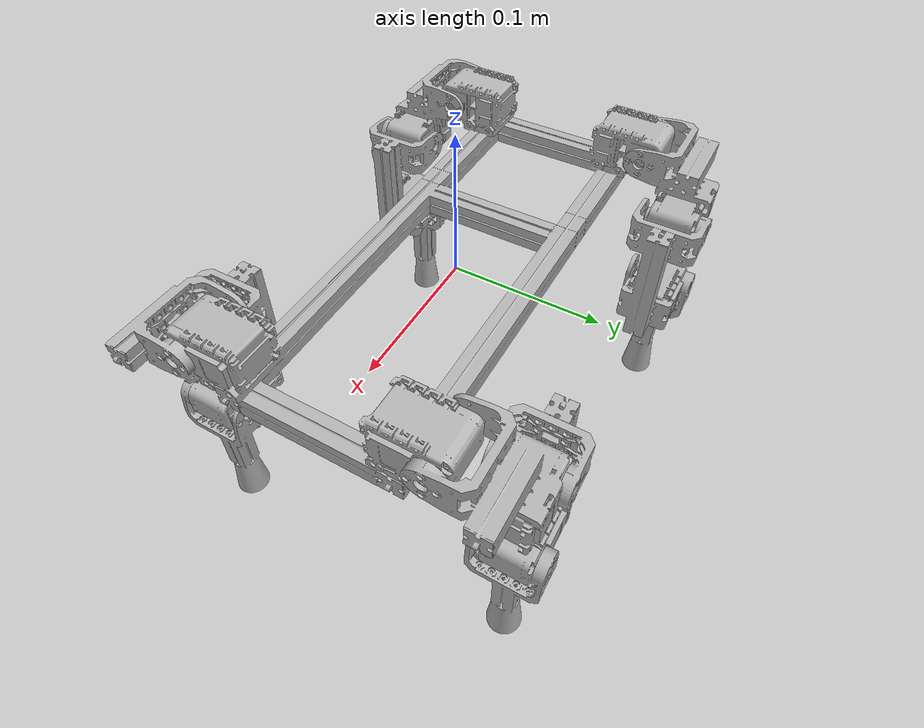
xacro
<?xml version="1.0" ?>
<robot name="sparky4" xmlns:xacro="http://www.ros.org/wiki/xacro">

<xacro:include filename="$(find sparky4_description)/urdf/materials.xacro" />
<xacro:include filename="$(find sparky4_description)/urdf/sparky4.trans" />
<xacro:include filename="$(find sparky4_description)/urdf/sparky4.gazebo" />
<link name="base_link">
  <inertial>
    <origin rpy="0 0 0" xyz="-0.0030445709897522553 0.0009159903249310375 0.02064399153635404"/>
    <mass value="2.767359729998042"/>
    <inertia ixx="0.008963" ixy="0.000112" ixz="-5.6e-05" iyy="0.043823" iyz="9e-06" izz="0.051668"/>
  </inertial>
  <visual>
    <origin rpy="0 0 0" xyz="0 0 0"/>
    <geometry>
      <mesh filename="package://sparky4_description/meshes/base_link.stl" scale="0.001 0.001 0.001"/>
    </geometry>
    <material name="silver"/>
  </visual>
  <collision>
    <origin rpy="0 0 0" xyz="0 0 0"/>
    <geometry>
      <mesh filename="package://sparky4_description/meshes/base_link.stl" scale="0.001 0.001 0.001"/>
    </geometry>
  </collision>
</link>

<link name="rf_hip_1">
  <inertial>
    <origin rpy="0 0 0" xyz="-0.02312045273011029 -0.030988365562342968 -0.02497288051171581"/>
    <mass value="0.06259861584578735"/>
    <inertia ixx="2.4e-05" ixy="-2e-06" ixz="-8e-06" iyy="3.3e-05" iyz="-4e-06" izz="2.7e-05"/>
  </inertial>
  <visual>
    <origin rpy="0 0 0" xyz="-0.15646 0.073945 -0.034286"/>
    <geometry>
      <mesh filename="package://sparky4_description/meshes/rf_hip_1.stl" scale="0.001 0.001 0.001"/>
    </geometry>
    <material name="silver"/>
  </visual>
  <collision>
    <origin rpy="0 0 0" xyz="-0.15646 0.073945 -0.034286"/>
    <geometry>
      <mesh filename="package://sparky4_description/meshes/rf_hip_1.stl" scale="0.001 0.001 0.001"/>
    </geometry>
  </collision>
</link>

<link name="rf_upper_1">
  <inertial>
    <origin rpy="0 0 0" xyz="-0.009414585800412531 0.01315168811465317 -0.04918651488271204"/>
    <mass value="0.5507860066210719"/>
    <inertia ixx="0.000457" ixy="2e-06" ixz="0.00012" iyy="0.000599" iyz="7e-06" izz="0.000262"/>
  </inertial>
  <visual>
    <origin rpy="0 0 0" xyz="-0.113842 0.121071 0.000254"/>
    <geometry>
      <mesh filename="package://sparky4_description/meshes/rf_upper_1.stl" scale="0.001 0.001 0.001"/>
    </geometry>
    <material name="silver"/>
  </visual>
  <collision>
    <origin rpy="0 0 0" xyz="-0.113842 0.121071 0.000254"/>
    <geometry>
      <mesh filename="package://sparky4_description/meshes/rf_upper_1.stl" scale="0.001 0.001 0.001"/>
    </geometry>
  </collision>
</link>

<link name="rf_lower_1">
  <inertial>
    <origin rpy="0 0 0" xyz="-0.0007153812152350114 0.01288818651473124 -0.056188682704720286"/>
    <mass value="0.029085864475835384"/>
    <inertia ixx="3.8e-05" ixy="0.0" ixz="-0.0" iyy="3.6e-05" iyz="1e-06" izz="4e-06"/>
  </inertial>
  <visual>
    <origin rpy="0 0 0" xyz="-0.129342 0.120985 0.065129"/>
    <geometry>
      <mesh filename="package://sparky4_description/meshes/rf_lower_1.stl" scale="0.001 0.001 0.001"/>
    </geometry>
    <material name="silver"/>
  </visual>
  <collision>
    <origin rpy="0 0 0" xyz="-0.129342 0.120985 0.065129"/>
    <geometry>
      <mesh filename="package://sparky4_description/meshes/rf_lower_1.stl" scale="0.001 0.001 0.001"/>
    </geometry>
  </collision>
</link>

<link name="lf_hip_1">
  <inertial>
    <origin rpy="0 0 0" xyz="-0.02312044219188225 0.03098843746715446 -0.024972883319291497"/>
    <mass value="0.06259859550258465"/>
    <inertia ixx="2.4e-05" ixy="2e-06" ixz="-8e-06" iyy="3.3e-05" iyz="4e-06" izz="2.7e-05"/>
  </inertial>
  <visual>
    <origin rpy="0 0 0" xyz="-0.15347 -0.075135 -0.034036"/>
    <geometry>
      <mesh filename="package://sparky4_description/meshes/lf_hip_1.stl" scale="0.001 0.001 0.001"/>
    </geometry>
    <material name="silver"/>
  </visual>
  <collision>
    <origin rpy="0 0 0" xyz="-0.15347 -0.075135 -0.034036"/>
    <geometry>
      <mesh filename="package://sparky4_description/meshes/lf_hip_1.stl" scale="0.001 0.001 0.001"/>
    </geometry>
  </collision>
</link>

<link name="lf_upper_1">
  <inertial>
    <origin rpy="0 0 0" xyz="-0.009414594526368836 -0.013151561436452477 -0.0491865724321654"/>
    <mass value="0.5507853722308999"/>
    <inertia ixx="0.000457" ixy="-2e-06" ixz="0.00012" iyy="0.000599" iyz="-7e-06" izz="0.000262"/>
  </inertial>
  <visual>
    <origin rpy="0 0 0" xyz="-0.110852 -0.122261 0.000504"/>
    <geometry>
      <mesh filename="package://sparky4_description/meshes/lf_upper_1.stl" scale="0.001 0.001 0.001"/>
    </geometry>
    <material name="silver"/>
  </visual>
  <collision>
    <origin rpy="0 0 0" xyz="-0.110852 -0.122261 0.000504"/>
    <geometry>
      <mesh filename="package://sparky4_description/meshes/lf_upper_1.stl" scale="0.001 0.001 0.001"/>
    </geometry>
  </collision>
</link>

<link name="lf_lower_1">
  <inertial>
    <origin rpy="0 0 0" xyz="-0.0007153812247730207 -0.012888070070416396 -0.056188683453603866"/>
    <mass value="0.029085864088178818"/>
    <inertia ixx="3.8e-05" ixy="-0.0" ixz="-0.0" iyy="3.6e-05" iyz="-1e-06" izz="4e-06"/>
  </inertial>
  <visual>
    <origin rpy="0 0 0" xyz="-0.126352 -0.122175 0.065379"/>
    <geometry>
      <mesh filename="package://sparky4_description/meshes/lf_lower_1.stl" scale="0.001 0.001 0.001"/>
    </geometry>
    <material name="silver"/>
  </visual>
  <collision>
    <origin rpy="0 0 0" xyz="-0.126352 -0.122175 0.065379"/>
    <geometry>
      <mesh filename="package://sparky4_description/meshes/lf_lower_1.stl" scale="0.001 0.001 0.001"/>
    </geometry>
  </collision>
</link>

<link name="rh_hip_1">
  <inertial>
    <origin rpy="0 0 0" xyz="0.023120047678799965 -0.030988320987065388 -0.02497288331928113"/>
    <mass value="0.06259859550258465"/>
    <inertia ixx="2.4e-05" ixy="2e-06" ixz="8e-06" iyy="3.3e-05" iyz="-4e-06" izz="2.7e-05"/>
  </inertial>
  <visual>
    <origin rpy="0 0 0" xyz="0.157114 0.073945 -0.034286"/>
    <geometry>
      <mesh filename="package://sparky4_description/meshes/rh_hip_1.stl" scale="0.001 0.001 0.001"/>
    </geometry>
    <material name="silver"/>
  </visual>
  <collision>
    <origin rpy="0 0 0" xyz="0.157114 0.073945 -0.034286"/>
    <geometry>
      <mesh filename="package://sparky4_description/meshes/rh_hip_1.stl" scale="0.001 0.001 0.001"/>
    </geometry>
  </collision>
</link>

<link name="rh_upper_1">
  <inertial>
    <origin rpy="0 0 0" xyz="0.009415200013284095 0.01315167791654151 -0.049186572432156295"/>
    <mass value="0.5507853722308999"/>
    <inertia ixx="0.000457" ixy="-2e-06" ixz="-0.00012" iyy="0.000599" iyz="7e-06" izz="0.000262"/>
  </inertial>
  <visual>
    <origin rpy="0 0 0" xyz="0.114497 0.121071 0.000254"/>
    <geometry>
      <mesh filename="package://sparky4_description/meshes/rh_upper_1.stl" scale="0.001 0.001 0.001"/>
    </geometry>
    <material name="silver"/>
  </visual>
  <collision>
    <origin rpy="0 0 0" xyz="0.114497 0.121071 0.000254"/>
    <geometry>
      <mesh filename="package://sparky4_description/meshes/rh_upper_1.stl" scale="0.001 0.001 0.001"/>
    </geometry>
  </collision>
</link>

<link name="rh_lower_1">
  <inertial>
    <origin rpy="0 0 0" xyz="0.0007159867116854346 0.012888186550505248 -0.056188683453593596"/>
    <mass value="0.029085864088178818"/>
    <inertia ixx="3.8e-05" ixy="-0.0" ixz="0.0" iyy="3.6e-05" iyz="1e-06" izz="4e-06"/>
  </inertial>
  <visual>
    <origin rpy="0 0 0" xyz="0.129997 0.120985 0.065129"/>
    <geometry>
      <mesh filename="package://sparky4_description/meshes/rh_lower_1.stl" scale="0.001 0.001 0.001"/>
    </geometry>
    <material name="silver"/>
  </visual>
  <collision>
    <origin rpy="0 0 0" xyz="0.129997 0.120985 0.065129"/>
    <geometry>
      <mesh filename="package://sparky4_description/meshes/rh_lower_1.stl" scale="0.001 0.001 0.001"/>
    </geometry>
  </collision>
</link>

<link name="lh_hip_1">
  <inertial>
    <origin rpy="0 0 0" xyz="0.023120558217028325 0.030988482042433027 -0.024972880511715034"/>
    <mass value="0.06259861584578735"/>
    <inertia ixx="2.4e-05" ixy="-2e-06" ixz="8e-06" iyy="3.3e-05" iyz="4e-06" izz="2.7e-05"/>
  </inertial>
  <visual>
    <origin rpy="0 0 0" xyz="0.157043 -0.076035 -0.034296"/>
    <geometry>
      <mesh filename="package://sparky4_description/meshes/lh_hip_1.stl" scale="0.001 0.001 0.001"/>
    </geometry>
    <material name="silver"/>
  </visual>
  <collision>
    <origin rpy="0 0 0" xyz="0.157043 -0.076035 -0.034296"/>
    <geometry>
      <mesh filename="package://sparky4_description/meshes/lh_hip_1.stl" scale="0.001 0.001 0.001"/>
    </geometry>
  </collision>
</link>

<link name="lh_upper_1">
  <inertial>
    <origin rpy="0 0 0" xyz="0.009414691287327429 -0.013151571634563472 -0.04918651488271246"/>
    <mass value="0.5507860066210719"/>
    <inertia ixx="0.000457" ixy="2e-06" ixz="-0.00012" iyy="0.000599" iyz="-7e-06" izz="0.000262"/>
  </inertial>
  <visual>
    <origin rpy="0 0 0" xyz="0.114425 -0.123161 0.000244"/>
    <geometry>
      <mesh filename="package://sparky4_description/meshes/lh_upper_1.stl" scale="0.001 0.001 0.001"/>
    </geometry>
    <material name="silver"/>
  </visual>
  <collision>
    <origin rpy="0 0 0" xyz="0.114425 -0.123161 0.000244"/>
    <geometry>
      <mesh filename="package://sparky4_description/meshes/lh_upper_1.stl" scale="0.001 0.001 0.001"/>
    </geometry>
  </collision>
</link>

<link name="lh_lower_1">
  <inertial>
    <origin rpy="0 0 0" xyz="-0.0007157171931690964 -0.012888070070414509 -0.05618868345359837"/>
    <mass value="0.029085864088178818"/>
    <inertia ixx="3.8e-05" ixy="-0.0" ixz="-0.0" iyy="3.6e-05" iyz="-1e-06" izz="4e-06"/>
  </inertial>
  <visual>
    <origin rpy="0 0 0" xyz="0.129925 -0.123075 0.065119"/>
    <geometry>
      <mesh filename="package://sparky4_description/meshes/lh_lower_1.stl" scale="0.001 0.001 0.001"/>
    </geometry>
    <material name="silver"/>
  </visual>
  <collision>
    <origin rpy="0 0 0" xyz="0.129925 -0.123075 0.065119"/>
    <geometry>
      <mesh filename="package://sparky4_description/meshes/lh_lower_1.stl" scale="0.001 0.001 0.001"/>
    </geometry>
  </collision>
</link>

<joint name="rf1" type="revolute">
  <origin rpy="0 0 0" xyz="0.15646 -0.073945 0.034286"/>
  <parent link="base_link"/>
  <child link="rf_hip_1"/>
  <axis xyz="1.0 0.0 -0.0"/>
  <limit effort="50" lower="-3.14159265359" upper="3.14159265359" velocity="5"/>
</joint>

<joint name="rf2" type="revolute">
  <origin rpy="0 0 0" xyz="-0.042618 -0.047126 -0.03454"/>
  <parent link="rf_hip_1"/>
  <child link="rf_upper_1"/>
  <axis xyz="0.0 1.0 0.0"/>
  <limit effort="50" lower="-3.14159265359" upper="3.14159265359" velocity="5"/>
</joint>

<joint name="rf3" type="revolute">
  <origin rpy="0 0 0" xyz="0.0155 8.6e-05 -0.064875"/>
  <parent link="rf_upper_1"/>
  <child link="rf_lower_1"/>
  <axis xyz="-0.0 1.0 0.0"/>
  <limit effort="50" lower="-3.14159265359" upper="3.14159265359" velocity="5"/>
</joint>

<joint name="lf1" type="revolute">
  <origin rpy="0 0 0" xyz="0.15347 0.075135 0.034036"/>
  <parent link="base_link"/>
  <child link="lf_hip_1"/>
  <axis xyz="1.0 0.0 -0.0"/>
  <limit effort="50" lower="-3.14159265359" upper="3.14159265359" velocity="5"/>
</joint>

<joint name="lf2" type="revolute">
  <origin rpy="0 0 0" xyz="-0.042618 0.047126 -0.03454"/>
  <parent link="lf_hip_1"/>
  <child link="lf_upper_1"/>
  <axis xyz="0.0 1.0 0.0"/>
  <limit effort="50" lower="-3.14159265359" upper="3.14159265359" velocity="5"/>
</joint>

<joint name="lf3" type="revolute">
  <origin rpy="0 0 0" xyz="0.0155 -8.6e-05 -0.064875"/>
  <parent link="lf_upper_1"/>
  <child link="lf_lower_1"/>
  <axis xyz="0.0 1.0 0.0"/>
  <limit effort="50" lower="-3.14159265359" upper="3.14159265359" velocity="5"/>
</joint>

<joint name="rh1" type="revolute">
  <origin rpy="0 0 0" xyz="-0.157114 -0.073945 0.034286"/>
  <parent link="base_link"/>
  <child link="rh_hip_1"/>
  <axis xyz="1.0 0.0 0.0"/>
  <limit effort="50" lower="-3.14159265359" upper="3.14159265359" velocity="5"/>
</joint>

<joint name="rh2" type="revolute">
  <origin rpy="0 0 0" xyz="0.042617 -0.047126 -0.03454"/>
  <parent link="rh_hip_1"/>
  <child link="rh_upper_1"/>
  <axis xyz="-0.0 1.0 0.0"/>
  <limit effort="50" lower="-3.14159265359" upper="3.14159265359" velocity="5"/>
</joint>

<joint name="rh3" type="revolute">
  <origin rpy="0 0 0" xyz="-0.0155 8.6e-05 -0.064875"/>
  <parent link="rh_upper_1"/>
  <child link="rh_lower_1"/>
  <axis xyz="-0.0 1.0 0.0"/>
  <limit effort="50" lower="-3.14159265359" upper="3.14159265359" velocity="5"/>
</joint>

<joint name="lh1" type="revolute">
  <origin rpy="0 0 0" xyz="-0.157043 0.076035 0.034296"/>
  <parent link="base_link"/>
  <child link="lh_hip_1"/>
  <axis xyz="1.0 -0.0 0.0"/>
  <limit effort="50" lower="-3.14159265359" upper="3.14159265359" velocity="5"/>
</joint>

<joint name="lh2" type="revolute">
  <origin rpy="0 0 0" xyz="0.042618 0.047126 -0.03454"/>
  <parent link="lh_hip_1"/>
  <child link="lh_upper_1"/>
  <axis xyz="-0.0 1.0 -0.0"/>
  <limit effort="50" lower="-3.14159265359" upper="3.14159265359" velocity="5"/>
</joint>

<joint name="lh3" type="revolute">
  <origin rpy="0 0 0" xyz="-0.0155 -8.6e-05 -0.064875"/>
  <parent link="lh_upper_1"/>
  <child link="lh_lower_1"/>
  <axis xyz="0.0 1.0 -0.0"/>
  <limit effort="50" lower="-3.14159265359" upper="3.14159265359" velocity="5"/>
</joint>

  <!--added stuff for compatibility with CHAMP Quadruped Gait Package-->

  <link name="rf_foot"/>
  <joint name="rf_foot_to_lower_leg" type="fixed">
    <parent link="rf_lower_1"/>
    <child link="rf_foot"/>
    <origin rpy="0 0 0" xyz="0 .014 -.11"/>
  </joint>

  <link name="lf_foot"/>
  <joint name="lf_foot_to_lower_leg" type="fixed">
    <parent link="lf_lower_1"/>
    <child link="lf_foot"/>
    <origin rpy="0 0 0" xyz="0 -.014 -.11"/>
  </joint>

  <link name="rh_foot"/>
  <joint name="rh_foot_to_lower_leg" type="fixed">
    <parent link="rh_lower_1"/>
    <child link="rh_foot"/>
    <origin rpy="0 0 0" xyz="0 .014 -.11"/>
  </joint>

  <link name="lh_foot"/>
  <joint name="lh_foot_to_lower_leg" type="fixed">
    <parent link="lh_lower_1"/>
    <child link="lh_foot"/>
    <origin rpy="0 0 0" xyz="0 -.014 -.11"/>
  </joint>
</robot>

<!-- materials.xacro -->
<robot name="sparky4" xmlns:xacro="http://www.ros.org/wiki/xacro" >

<material name="silver">
  <color rgba="0.700 0.700 0.700 1.000"/>
</material>

</robot>

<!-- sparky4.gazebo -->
<robot name="sparky4" xmlns:xacro="http://www.ros.org/wiki/xacro" >

<xacro:property name="body_color" value="Gazebo/Silver" />

<gazebo>
  <plugin filename="libgazebo_ros_control.so" name="control"/>
</gazebo>
<gazebo reference="base_link">
  <material>${body_color}</material>
  <selfCollide>true</selfCollide>
  <gravity>true</gravity>
</gazebo>

<gazebo reference="rf_hip_1">
  <material>${body_color}</material>
</gazebo>

<gazebo reference="rf_upper_1">
  <material>${body_color}</material>
</gazebo>

<gazebo reference="rf_lower_1">
  <material>${body_color}</material>
  <selfCollide>true</selfCollide>
  <mu1>0.9</mu1>
  <mu2>0.9</mu2>
  <minDepth>0.001</minDepth>
</gazebo>

<gazebo reference="lf_hip_1">
  <material>${body_color}</material>
</gazebo>

<gazebo reference="lf_upper_1">
  <material>${body_color}</material>
</gazebo>

<gazebo reference="lf_lower_1">
  <material>${body_color}</material>
  <selfCollide>true</selfCollide>
  <mu1>0.9</mu1>
  <mu2>0.9</mu2>
  <minDepth>0.001</minDepth>
</gazebo>

<gazebo reference="rh_hip_1">
  <material>${body_color}</material>
</gazebo>

<gazebo reference="rh_upper_1">
  <material>${body_color}</material>
</gazebo>

<gazebo reference="rh_lower_1">
  <material>${body_color}</material>
  <selfCollide>true</selfCollide>
  <mu1>0.9</mu1>
  <mu2>0.9</mu2>
  <minDepth>0.001</minDepth>
</gazebo>

<gazebo reference="lh_hip_1">
  <material>${body_color}</material>
</gazebo>

<gazebo reference="lh_upper_1">
  <material>${body_color}</material>
</gazebo>

<gazebo reference="lh_lower_1">
  <material>${body_color}</material>
  <mu1>0.9</mu1>
  <mu2>0.9</mu2>
  <minDepth>0.001</minDepth>
  <selfCollide>true</selfCollide>
</gazebo>

</robot>
